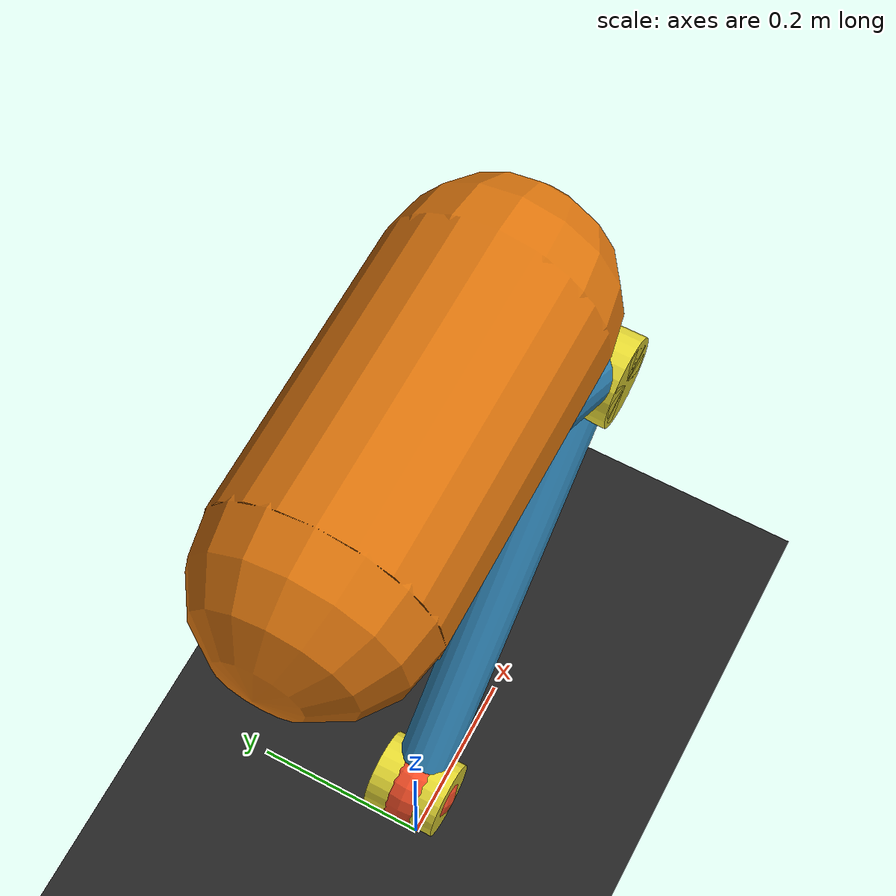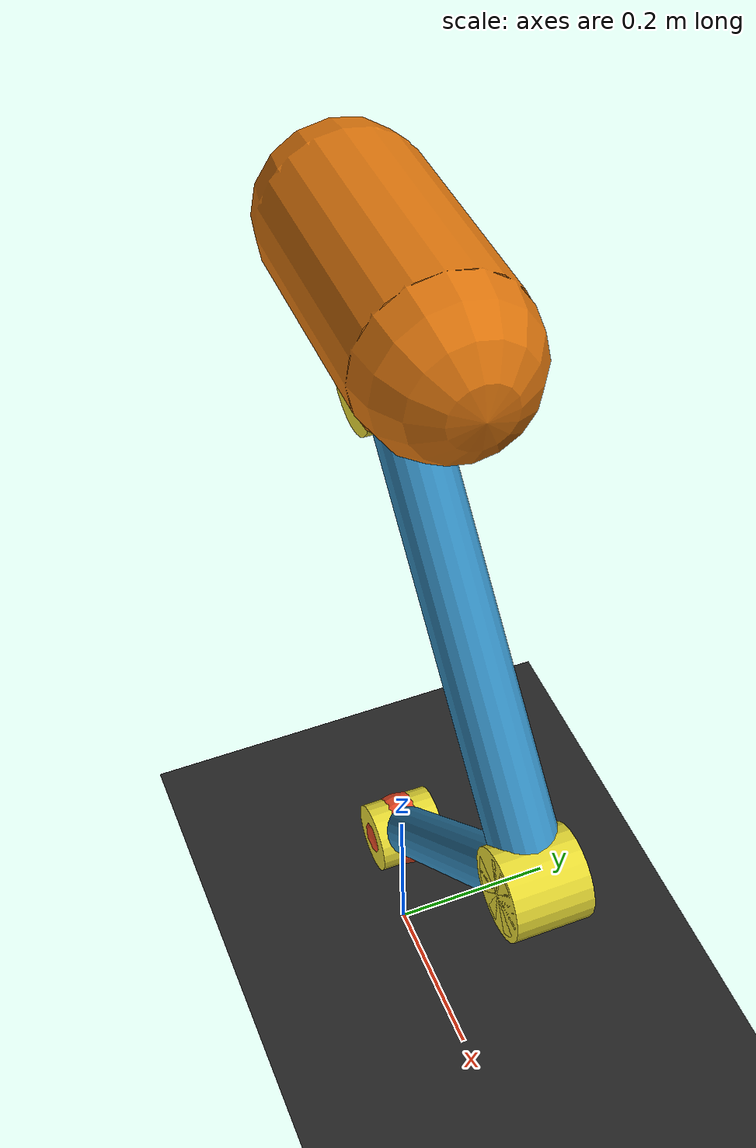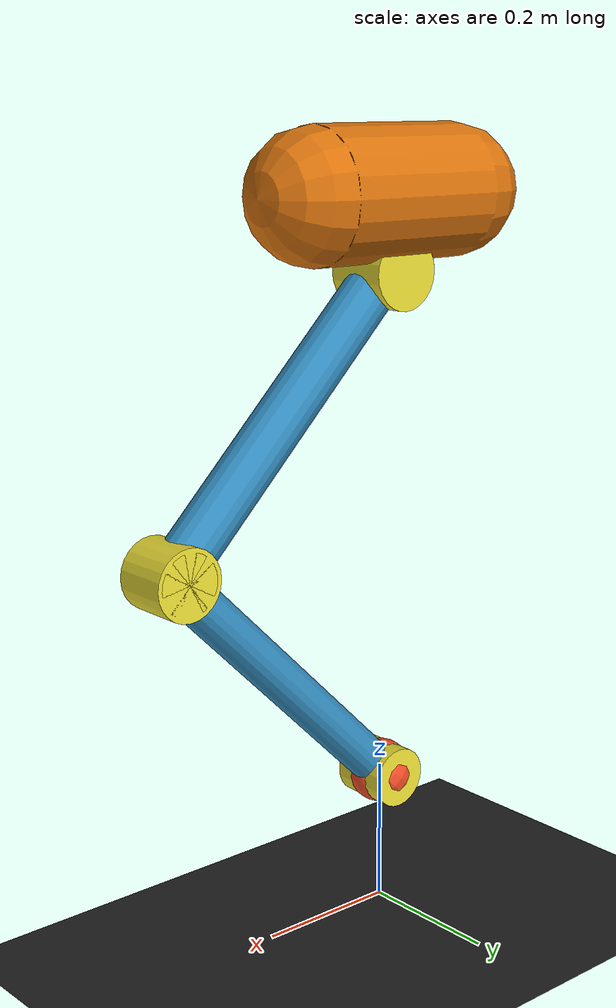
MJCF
<mujoco model="hopper_robot">

    <compiler angle="degree"/>
    <option timestep="0.002" gravity="0 0 -9.81"/>

    <visual>
        <quality shadowsize="4096"/>
        <map znear="0.01" zfar="50"/>
        <headlight diffuse="0.6 0.6 0.6" ambient="0.3 0.3 0.3" specular="0.1 0.1 0.1"/>
    </visual>

    <asset>

        <!-- skybox -->
        <texture name="sky_tex"
                 type="skybox"
                 builtin="gradient"
                 rgb1="0.08 0.08 0.12"
                 rgb2="0.35 0.20 0.10"
                 width="512"
                 height="512"/>

        <!-- floor -->
        <texture name="floor_tex"
                 type="2d"
                 builtin="checker"
                 rgb1="0.18 0.18 0.18"
                 rgb2="0.10 0.10 0.10"
                 width="512"
                 height="512"/>

        <material name="floor_mat"
                  texture="floor_tex"
                  texrepeat="30 30"
                  reflectance="0.25"
                  specular="0.3"
                  shininess="0.2"/>

        <!-- Body materials -->
        <material name="torso_mat"
                  rgba="0.85 0.45 0.05 1"
                  specular="0.6"
                  shininess="0.5"
                  reflectance="0.1"/>

        <material name="limb_mat"
                  rgba="0.20 0.55 0.75 1"
                  specular="0.8"
                  shininess="0.7"
                  reflectance="0.15"/>

        <material name="joint_mat"
                  rgba="0.90 0.85 0.20 1"
                  specular="1.0"
                  shininess="0.9"
                  reflectance="0.2"/>

        <material name="foot_mat"
                  rgba="0.95 0.30 0.15 1"
                  specular="0.5"
                  shininess="0.3"/>

    </asset>

    <default>
        <joint damping="1"/>
        <geom density="3000" friction="1 0.1 0.1"/>
    </default>

    <worldbody>

        <!-- Key light -->
        <light name="key"
               pos="2 -2 8"
               dir="-0.25 0.25 -1"
               directional="true"
               diffuse="1.0 0.95 0.85"
               specular="0.4 0.4 0.35"
               castshadow="true"/>

        <!-- Fill light -->
        <light name="fill"
               pos="-3 3 5"
               dir="0.4 -0.4 -1"
               directional="true"
               diffuse="0.25 0.30 0.40"
               specular="0.05 0.05 0.1"
               castshadow="false"/>

        <!-- Ground -->
        <geom name="ground"
              type="plane"
              size="15 15 0.1"
              material="floor_mat"/>

        <!-- ── TORSO (base body) ── -->
        <body name="base" pos="0 0 1">

            <joint name="x_slide"
                   type="slide"
                   axis="1 0 0"/>

            <joint name="z_slide"
                   type="slide"
                   axis="0 0 1"/>

            <!-- Main torso block -->
            <geom type="capsule"
                  size="0.09 0.12"
                  pos="0 0 0"
                  quat="0.707 0 0.707 0"
                  material="torso_mat"/>

            <!-- Hip pivot ring -->
            <geom type="cylinder"
                  size="0.05 0.045"
                  pos="0 0 -0.10"
                  quat="0.707 0.707 0 0"
                  material="joint_mat"/>

            <!-- ── THIGH ── -->
            <body name="thigh"
                  pos="0 0 -0.10"
                  euler="0 -45 0">

                <joint name="hip"
                       type="hinge"
                       axis="0 1 0"/>

                <!-- Thigh capsule link -->
                <geom type="capsule"
                      size="0.035 0.23"
                      pos="0 0 -0.25"
                      material="limb_mat"/>

                <!-- Upper knee ring -->
                <geom type="cylinder"
                      size="0.048 0.04"
                      pos="0 0 0"
                      quat="0.707 0.707 0 0"
                      material="joint_mat"/>

                <!-- Lower knee ring -->
                <geom type="cylinder"
                      size="0.048 0.04"
                      pos="0 0 -0.5"
                      quat="0.707 0.707 0 0"
                      material="joint_mat"/>

                <!-- ── SHIN ── -->
                <body name="shin"
                      pos="0 0 -0.5"
                      euler="0 90 0">

                    <joint name="knee"
                           type="hinge"
                           axis="0 1 0"/>

                    <!-- Shin capsule link -->
                    <geom type="capsule"
                          size="0.030 0.23"
                          pos="0 0 -0.25"
                          material="limb_mat"/>

                    <!-- Upper ankle ring -->
                    <geom type="cylinder"
                          size="0.042 0.04"
                          pos="0 0 0"
                          quat="0.707 0.707 0 0"
                          material="joint_mat"/>

                    <!-- Lower ankle ring -->
                    <geom type="cylinder"
                          size="0.042 0.04"
                          pos="0 0 -0.5"
                          quat="0.707 0.707 0 0"
                          material="joint_mat"/>

                    <!-- Foot contact sphere -->
                    <geom name="foot"
                          type="sphere"
                          pos="0 0 -0.5"
                          size="0.045"
                          friction="2 0.1 0.1"
                          material="foot_mat"/>

                </body>
            </body>

        </body>

    </worldbody>

    <actuator>
        <motor joint="hip"  gear="10"/>
        <motor joint="knee" gear="10"/>
    </actuator>

</mujoco>
